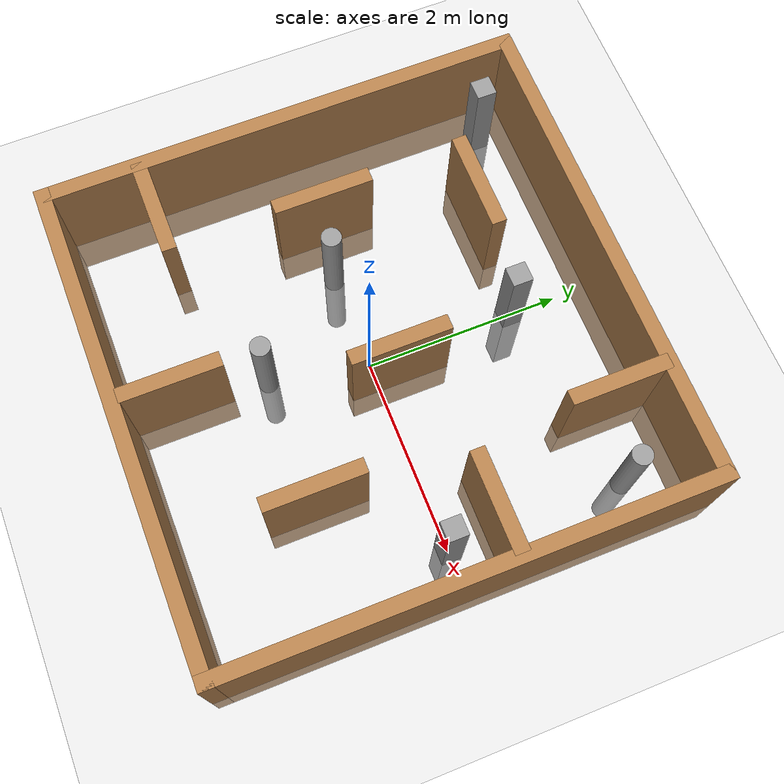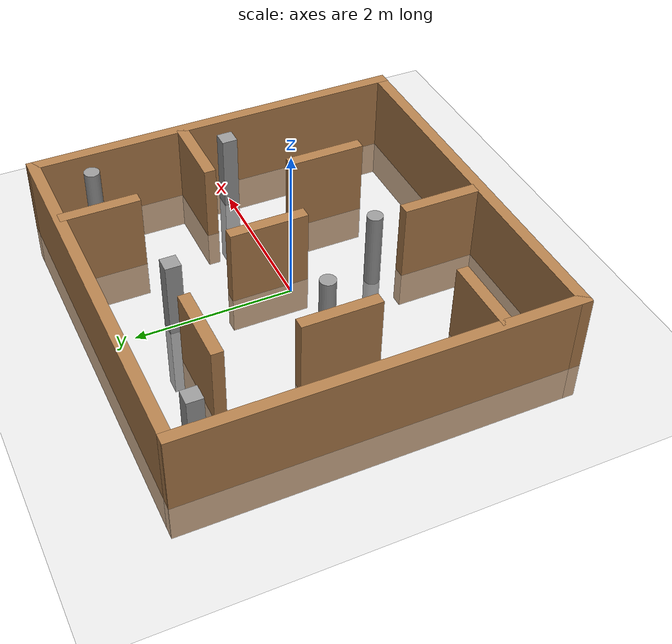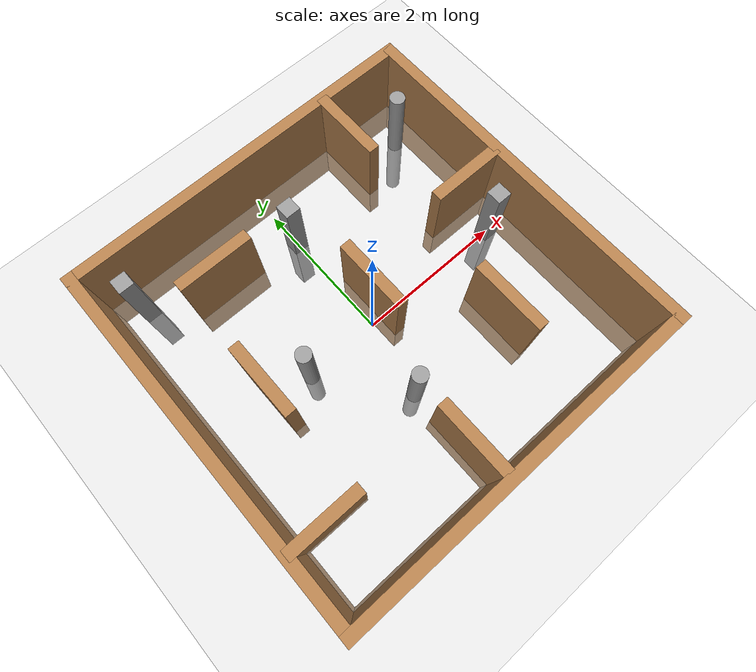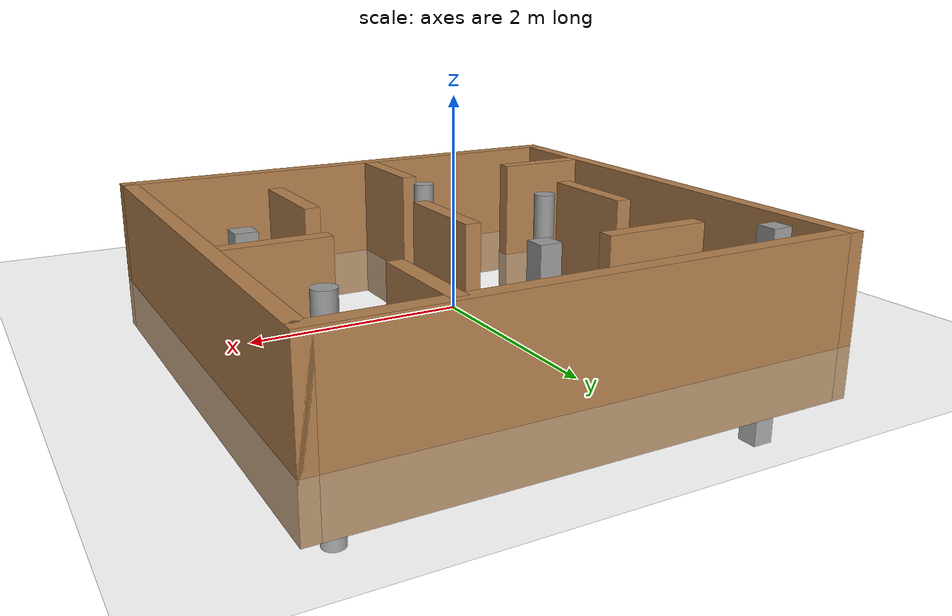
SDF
<sdf version="1.4">
 <world name="default">
  <include><uri>model://ground_plane</uri></include>
  <include><uri>model://sun</uri></include>
  <include><uri>model://my_plaza</uri><name>my_plaza</name></include>
 </world>
</sdf>

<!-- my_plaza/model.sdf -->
<sdf version='1.6'>
  <model name='my_plaza'>
    <pose frame=''>0 0 0 0 -0 0</pose>

    <link name='Wall_0'>
      <collision name='Wall_0_Collision'>
        <geometry>
          <box>
            <size>5 0.15 1.5</size>
          </box>
        </geometry>
        <pose frame=''>0 0 0.25 0 -0 0</pose>
      </collision>
      <visual name='Wall_0_Visual'>
        <pose frame=''>0 0 0.25 0 -0 0</pose>
        <geometry>
          <box>
            <size>5 0.15 1.5</size>
          </box>
        </geometry>
        <material>
          <script>
            <uri>file://media/materials/scripts/gazebo.material</uri>
            <name>Gazebo/Wood</name>
          </script>
          <ambient>1 1 1 1</ambient>
        </material>
      </visual>
      <pose frame=''>-2.425 0 0 0 -0 1.5708</pose>
    </link>
    <link name='Wall_11'>
      <collision name='Wall_11_Collision'>
        <geometry>
          <box>
            <size>1 0.15 1.5</size>
          </box>
        </geometry>
        <pose frame=''>0 0 0.25 0 -0 0</pose>
      </collision>
      <visual name='Wall_11_Visual'>
        <pose frame=''>0 0 0.25 0 -0 0</pose>
        <geometry>
          <box>
            <size>1 0.15 1.5</size>
          </box>
        </geometry>
        <material>
          <script>
            <uri>file://media/materials/scripts/gazebo.material</uri>
            <name>Gazebo/Wood</name>
          </script>
          <ambient>1 1 1 1</ambient>
        </material>
      </visual>
      <pose frame=''>-1.937 -1.467 0 0 -0 0</pose>
    </link>
    <link name='Wall_13'>
      <collision name='Wall_13_Collision'>
        <geometry>
          <box>
            <size>1 0.15 1.5</size>
          </box>
        </geometry>
        <pose frame=''>0 0 0.25 0 -0 0</pose>
      </collision>
      <visual name='Wall_13_Visual'>
        <pose frame=''>0 0 0.25 0 -0 0</pose>
        <geometry>
          <box>
            <size>1 0.15 1.5</size>
          </box>
        </geometry>
        <material>
          <script>
            <uri>file://media/materials/scripts/gazebo.material</uri>
            <name>Gazebo/Wood</name>
          </script>
          <ambient>1 1 1 1</ambient>
        </material>
      </visual>
      <pose frame=''>-0.22 -1.866 0 0 0 -1.5708</pose>
    </link>
    <link name='Wall_15'>
      <collision name='Wall_15_Collision'>
        <geometry>
          <box>
            <size>1 0.15 1.5</size>
          </box>
        </geometry>
        <pose frame=''>0 0 0.25 0 -0 0</pose>
      </collision>
      <visual name='Wall_15_Visual'>
        <pose frame=''>0 0 0.25 0 -0 0</pose>
        <geometry>
          <box>
            <size>1 0.15 1.5</size>
          </box>
        </geometry>
        <material>
          <script>
            <uri>file://media/materials/scripts/gazebo.material</uri>
            <name>Gazebo/Wood</name>
          </script>
          <ambient>1 1 1 1</ambient>
        </material>
      </visual>
      <pose frame=''>1.195 -1.002 0 0 -0 1.5708</pose>
    </link>
    <link name='Wall_17'>
      <collision name='Wall_17_Collision'>
        <geometry>
          <box>
            <size>1 0.15 1.5</size>
          </box>
        </geometry>
        <pose frame=''>0 0 0.25 0 -0 0</pose>
      </collision>
      <visual name='Wall_17_Visual'>
        <pose frame=''>0 0 0.25 0 -0 0</pose>
        <geometry>
          <box>
            <size>1 0.15 1.5</size>
          </box>
        </geometry>
        <material>
          <script>
            <uri>file://media/materials/scripts/gazebo.material</uri>
            <name>Gazebo/Wood</name>
          </script>
          <ambient>1 1 1 1</ambient>
        </material>
      </visual>
      <pose frame=''>1.288 1.93 0 0 0 -1.5708</pose>
    </link>
    <link name='Wall_19'>
      <collision name='Wall_19_Collision'>
        <geometry>
          <box>
            <size>1 0.15 1.5</size>
          </box>
        </geometry>
        <pose frame=''>0 0 0.25 0 -0 0</pose>
      </collision>
      <visual name='Wall_19_Visual'>
        <pose frame=''>0 0 0.25 0 -0 0</pose>
        <geometry>
          <box>
            <size>1 0.15 1.5</size>
          </box>
        </geometry>
        <material>
          <script>
            <uri>file://media/materials/scripts/gazebo.material</uri>
            <name>Gazebo/Wood</name>
          </script>
          <ambient>1 1 1 1</ambient>
        </material>
      </visual>
      <pose frame=''>1.91128 0.4632 0 0 -0 0</pose>
    </link>
    <link name='Wall_2'>
      <collision name='Wall_2_Collision'>
        <geometry>
          <box>
            <size>5 0.15 1.5</size>
          </box>
        </geometry>
        <pose frame=''>0 0 0.25 0 -0 0</pose>
      </collision>
      <visual name='Wall_2_Visual'>
        <pose frame=''>0 0 0.25 0 -0 0</pose>
        <geometry>
          <box>
            <size>5 0.15 1.5</size>
          </box>
        </geometry>
        <material>
          <script>
            <uri>file://media/materials/scripts/gazebo.material</uri>
            <name>Gazebo/Wood</name>
          </script>
          <ambient>1 1 1 1</ambient>
        </material>
      </visual>
      <pose frame=''>0 2.425 0 0 -0 0</pose>
    </link>
    <link name='Wall_21'>
      <collision name='Wall_21_Collision'>
        <geometry>
          <box>
            <size>1 0.15 1.5</size>
          </box>
        </geometry>
        <pose frame=''>0 0 0.25 0 -0 0</pose>
      </collision>
      <visual name='Wall_21_Visual'>
        <pose frame=''>0 0 0.25 0 -0 0</pose>
        <geometry>
          <box>
            <size>1 0.15 1.5</size>
          </box>
        </geometry>
        <material>
          <script>
            <uri>file://media/materials/scripts/gazebo.material</uri>
            <name>Gazebo/Wood</name>
          </script>
          <ambient>1 1 1 1</ambient>
        </material>
      </visual>
      <pose frame=''>0.204 0.215 0 0 0 -1.5708</pose>
    </link>
    <link name='Wall_3'>
      <collision name='Wall_3_Collision'>
        <geometry>
          <box>
            <size>5 0.15 1.5</size>
          </box>
        </geometry>
        <pose frame=''>0 0 0.25 0 -0 0</pose>
      </collision>
      <visual name='Wall_3_Visual'>
        <pose frame=''>0 0 0.25 0 -0 0</pose>
        <geometry>
          <box>
            <size>5 0.15 1.5</size>
          </box>
        </geometry>
        <material>
          <script>
            <uri>file://media/materials/scripts/gazebo.material</uri>
            <name>Gazebo/Wood</name>
          </script>
          <ambient>1 1 1 1</ambient>
        </material>
      </visual>
      <pose frame=''>2.425 0 0 0 0 -1.5708</pose>
    </link>
    <link name='Wall_4'>
      <collision name='Wall_4_Collision'>
        <geometry>
          <box>
            <size>5 0.15 1.5</size>
          </box>
        </geometry>
        <pose frame=''>0 0 0.25 0 -0 0</pose>
      </collision>
      <visual name='Wall_4_Visual'>
        <pose frame=''>0 0 0.25 0 -0 0</pose>
        <geometry>
          <box>
            <size>5 0.15 1.5</size>
          </box>
        </geometry>
        <material>
          <script>
            <uri>file://media/materials/scripts/gazebo.material</uri>
            <name>Gazebo/Wood</name>
          </script>
          <ambient>1 1 1 1</ambient>
        </material>
      </visual>
      <pose frame=''>0 -2.425 0 0 -0 3.14159</pose>
    </link>
    <link name='Wall_7'>
      <collision name='Wall_7_Collision'>
        <geometry>
          <box>
            <size>1 0.15 1.5</size>
          </box>
        </geometry>
        <pose frame=''>0 0 0.25 0 -0 0</pose>
      </collision>
      <visual name='Wall_7_Visual'>
        <pose frame=''>0 0 0.25 0 -0 0</pose>
        <geometry>
          <box>
            <size>1 0.15 1.5</size>
          </box>
        </geometry>
        <material>
          <script>
            <uri>file://media/materials/scripts/gazebo.material</uri>
            <name>Gazebo/Wood</name>
          </script>
          <ambient>1 1 1 1</ambient>
        </material>
      </visual>
      <pose frame=''>-1.064 1.548 0 0 -0 0</pose>
    </link>
    <link name='Wall_9'>
      <collision name='Wall_9_Collision'>
        <geometry>
          <box>
            <size>1 0.15 1.5</size>
          </box>
        </geometry>
        <pose frame=''>0 0 0.25 0 -0 0</pose>
      </collision>
      <visual name='Wall_9_Visual'>
        <pose frame=''>0 0 0.25 0 -0 0</pose>
        <geometry>
          <box>
            <size>1 0.15 1.5</size>
          </box>
        </geometry>
        <material>
          <script>
            <uri>file://media/materials/scripts/gazebo.material</uri>
            <name>Gazebo/Wood</name>
          </script>
          <ambient>1 1 1 1</ambient>
        </material>
      </visual>
      <pose frame=''>-1.502 0.092 0 0 0 -1.5708</pose>
    </link>

    <link name='box_1'>
      <collision name='box_1_Collision'>
        <geometry>
          <box>
            <size>0.2 0.2 2.0</size>
          </box>
        </geometry>
        <pose frame=''>0 0.75 0 0 0 0</pose>
      </collision>
      <visual name='box_1_Visual'>
        <pose frame=''>0 0.75 0 0 0 0</pose>
        <geometry>
          <box>
            <size>0.2 0.2 2.0</size>
          </box>
        </geometry>
         <material>
          <script>
            <uri>file://media/materials/scripts/gazebo.material</uri>
            <name>Gazebo/Grey</name>
          </script>
        </material>
      </visual>
      <pose frame=''>0 0.75 0 0 0 0</pose>
    </link>

    <link name='box_2'>
      <collision name='box_2_Collision'>
        <geometry>
          <box>
            <size>0.2 0.2 2.0</size>
          </box>
        </geometry>
        <pose frame=''>1 0 0 0 0 0</pose>
      </collision>
      <visual name='box_2_Visual'>
        <pose frame=''>1 0 0 0 0 0</pose>
        <geometry>
          <box>
            <size>0.2 0.2 2.0</size>
          </box>
        </geometry>
         <material>
          <script>
            <uri>file://media/materials/scripts/gazebo.material</uri>
            <name>Gazebo/Grey</name>
          </script>
        </material>
      </visual>
      <pose frame=''>1 0 0 0 0 0</pose>
    </link>

     <link name='box_3'>
      <collision name='box_3_Collision'>
        <geometry>
          <box>
            <size>0.2 0.2 2.0</size>
          </box>
        </geometry>
        <pose frame=''>-1 1 0 0 0 0</pose>
      </collision>
      <visual name='box_3_Visual'>
        <pose frame=''>-1 1 0 0 0 0</pose>
        <geometry>
          <box>
            <size>0.2 0.2 2.0</size>
          </box>
        </geometry>
         <material>
          <script>
            <uri>file://media/materials/scripts/gazebo.material</uri>
            <name>Gazebo/Grey</name>
          </script>
        </material>
      </visual>
      <pose frame=''>-1 1 0 0 0 0</pose>
    </link>

     <link name='cylinder_1'>
      <collision name='cylinder_1_Collision'>
        <geometry>
          <cylinder>
             <length>2.0</length>
             <radius>0.1</radius>
          </cylinder>
        </geometry>
        <pose frame=''>-0.5 0 0 0 0 0</pose>
      </collision>
      <visual name='cylinder_1_Visual'>
        <pose frame=''>-0.5 0 0 0 0 0</pose>
        <geometry>
          <cylinder>
             <length>2.0</length>
             <radius>0.1</radius>
          </cylinder>
        </geometry>
         <material>
          <script>
            <uri>file://media/materials/scripts/gazebo.material</uri>
            <name>Gazebo/Grey</name>
          </script>
        </material>
      </visual>
      <pose frame=''>-0.5 0 0 0 0 0</pose>
    </link>

     <link name='cylinder_2'>
      <collision name='cylinder_2_Collision'>
        <geometry>
          <cylinder>
             <length>2.0</length>
             <radius>0.1</radius>
          </cylinder>
        </geometry>
        <pose frame=''>-0.1 -0.5 0 0 0 0</pose>
      </collision>
      <visual name='cylinder_2_Visual'>
        <pose frame=''>-0.1 -0.5 0 0 0 0</pose>
        <geometry>
          <cylinder>
             <length>2.0</length>
             <radius>0.1</radius>
          </cylinder>
        </geometry>
         <material>
          <script>
            <uri>file://media/materials/scripts/gazebo.material</uri>
            <name>Gazebo/Grey</name>
          </script>
        </material>
      </visual>
      <pose frame=''>-0.1 -0.5 0 0 0 0</pose>
    </link>

     <link name='cylinder_3'>
      <collision name='cylinder_3_Collision'>
        <geometry>
          <cylinder>
             <length>2.0</length>
             <radius>0.1</radius>
          </cylinder>
        </geometry>
        <pose frame=''>1 0.9 0 0 0 0</pose>
      </collision>
      <visual name='cylinder_3_Visual'>
        <pose frame=''>1 0.9 0 0 0 0</pose>
        <geometry>
          <cylinder>
             <length>2.0</length>
             <radius>0.1</radius>
          </cylinder>
        </geometry>
         <material>
          <script>
            <uri>file://media/materials/scripts/gazebo.material</uri>
            <name>Gazebo/Grey</name>
          </script>
        </material>
      </visual>
      <pose frame=''>1 0.9 0 0 0 0</pose>
    </link>

    <static>1</static>
  </model>
</sdf>
